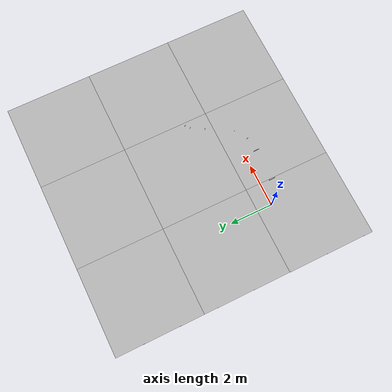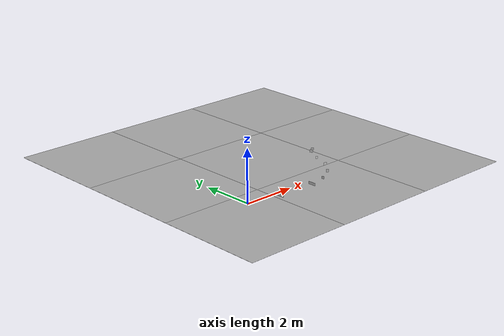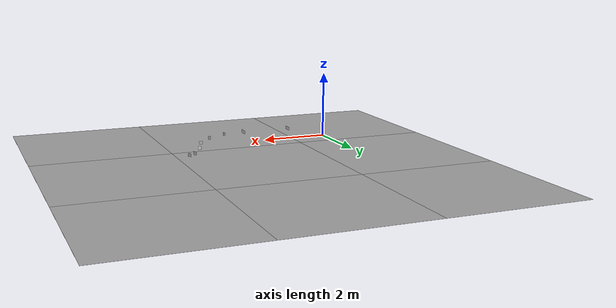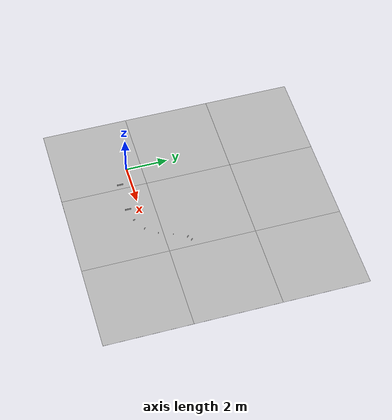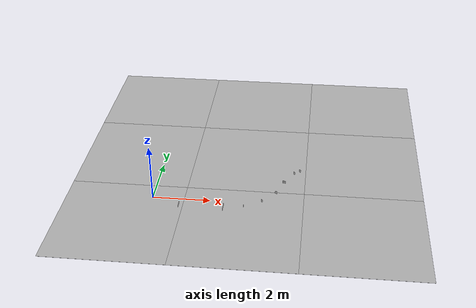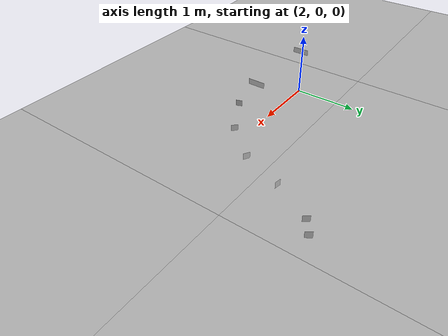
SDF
<sdf version='1.6'><world name='default'>
    <light name='sun_light' type='directional'>
      <pose frame=''>0 0 10 0 -0 0</pose>
      <diffuse>0.5 0.5 0.5 1</diffuse>
      <specular>0.1 0.1 0.1 1</specular>
      <direction>0.1 0.1 -0.9</direction>
      <attenuation>
        <range>20</range>
        <constant>0.5</constant>
        <linear>0.01</linear>
        <quadratic>0.001</quadratic>
      </attenuation>
      <cast_shadows>1</cast_shadows>
    </light>

    <model name='Tile/0-0'>
      <static>1</static>
      <link name='link'>
        <collision name='collision'>
          <geometry>
            <plane>
              <normal>0 0 1</normal>
              <size>4.096 4.096</size>
            </plane>
          </geometry>
          <surface>
            <friction>
              <ode>
                <mu>100</mu>
                <mu2>50</mu2>
              </ode>
              <torsional>
                <ode/>
              </torsional>
            </friction>
            <contact>
              <ode/>
            </contact>
            <bounce/>
          </surface>
          <max_contacts>10</max_contacts>
        </collision>
        <visual name='visual'>
          <cast_shadows>0</cast_shadows>
          <geometry>
            <plane>
              <normal>0 0 1</normal>
              <size>4.096 4.096</size>
            </plane>
          </geometry>
          <material>
            <script>
              <uri>file://materials/scripts</uri>
              <uri>file://materials/textures</uri>
              <name>Tile/d2a0822d2df9434b2a10c1df4b51959f07967b7722c4dc5c94304e16f4e1de29</name>
            </script>
          </material>
        </visual>
        <self_collide>0</self_collide>
        <enable_wind>0</enable_wind>
        <kinematic>0</kinematic>
      </link>
      <pose frame=''>-0.952 -1.3519999999999999 0 0 -0 0</pose>
    </model>

    <model name='Tile/0-1'>
      <static>1</static>
      <link name='link'>
        <collision name='collision'>
          <geometry>
            <plane>
              <normal>0 0 1</normal>
              <size>4.096 4.096</size>
            </plane>
          </geometry>
          <surface>
            <friction>
              <ode>
                <mu>100</mu>
                <mu2>50</mu2>
              </ode>
              <torsional>
                <ode/>
              </torsional>
            </friction>
            <contact>
              <ode/>
            </contact>
            <bounce/>
          </surface>
          <max_contacts>10</max_contacts>
        </collision>
        <visual name='visual'>
          <cast_shadows>0</cast_shadows>
          <geometry>
            <plane>
              <normal>0 0 1</normal>
              <size>4.096 4.096</size>
            </plane>
          </geometry>
          <material>
            <script>
              <uri>file://materials/scripts</uri>
              <uri>file://materials/textures</uri>
              <name>Tile/5eab350b8220ac9944dbdfa4ac3288c7c17e24c3bf5df0dfcf6173d64dae00a1</name>
            </script>
          </material>
        </visual>
        <self_collide>0</self_collide>
        <enable_wind>0</enable_wind>
        <kinematic>0</kinematic>
      </link>
      <pose frame=''>-0.952 2.744 0 0 -0 0</pose>
    </model>

    <model name='Tile/0-2'>
      <static>1</static>
      <link name='link'>
        <collision name='collision'>
          <geometry>
            <plane>
              <normal>0 0 1</normal>
              <size>4.096 4.096</size>
            </plane>
          </geometry>
          <surface>
            <friction>
              <ode>
                <mu>100</mu>
                <mu2>50</mu2>
              </ode>
              <torsional>
                <ode/>
              </torsional>
            </friction>
            <contact>
              <ode/>
            </contact>
            <bounce/>
          </surface>
          <max_contacts>10</max_contacts>
        </collision>
        <visual name='visual'>
          <cast_shadows>0</cast_shadows>
          <geometry>
            <plane>
              <normal>0 0 1</normal>
              <size>4.096 4.096</size>
            </plane>
          </geometry>
          <material>
            <script>
              <uri>file://materials/scripts</uri>
              <uri>file://materials/textures</uri>
              <name>Tile/5eab350b8220ac9944dbdfa4ac3288c7c17e24c3bf5df0dfcf6173d64dae00a1</name>
            </script>
          </material>
        </visual>
        <self_collide>0</self_collide>
        <enable_wind>0</enable_wind>
        <kinematic>0</kinematic>
      </link>
      <pose frame=''>-0.952 6.84 0 0 -0 0</pose>
    </model>

    <model name='Tile/1-0'>
      <static>1</static>
      <link name='link'>
        <collision name='collision'>
          <geometry>
            <plane>
              <normal>0 0 1</normal>
              <size>4.096 4.096</size>
            </plane>
          </geometry>
          <surface>
            <friction>
              <ode>
                <mu>100</mu>
                <mu2>50</mu2>
              </ode>
              <torsional>
                <ode/>
              </torsional>
            </friction>
            <contact>
              <ode/>
            </contact>
            <bounce/>
          </surface>
          <max_contacts>10</max_contacts>
        </collision>
        <visual name='visual'>
          <cast_shadows>0</cast_shadows>
          <geometry>
            <plane>
              <normal>0 0 1</normal>
              <size>4.096 4.096</size>
            </plane>
          </geometry>
          <material>
            <script>
              <uri>file://materials/scripts</uri>
              <uri>file://materials/textures</uri>
              <name>Tile/eee40ccea9311317126f079acab8a58f75d18f4e68f1ac2bab7b07feca064cc9</name>
            </script>
          </material>
        </visual>
        <self_collide>0</self_collide>
        <enable_wind>0</enable_wind>
        <kinematic>0</kinematic>
      </link>
      <pose frame=''>3.144 -1.3519999999999999 0 0 -0 0</pose>
    </model>

    <model name='Tile/1-1'>
      <static>1</static>
      <link name='link'>
        <collision name='collision'>
          <geometry>
            <plane>
              <normal>0 0 1</normal>
              <size>4.096 4.096</size>
            </plane>
          </geometry>
          <surface>
            <friction>
              <ode>
                <mu>100</mu>
                <mu2>50</mu2>
              </ode>
              <torsional>
                <ode/>
              </torsional>
            </friction>
            <contact>
              <ode/>
            </contact>
            <bounce/>
          </surface>
          <max_contacts>10</max_contacts>
        </collision>
        <visual name='visual'>
          <cast_shadows>0</cast_shadows>
          <geometry>
            <plane>
              <normal>0 0 1</normal>
              <size>4.096 4.096</size>
            </plane>
          </geometry>
          <material>
            <script>
              <uri>file://materials/scripts</uri>
              <uri>file://materials/textures</uri>
              <name>Tile/40c1d95162f8e69419f5567cfef437df2ad17ad79a02e6fcf10550b6644f04d4</name>
            </script>
          </material>
        </visual>
        <self_collide>0</self_collide>
        <enable_wind>0</enable_wind>
        <kinematic>0</kinematic>
      </link>
      <pose frame=''>3.144 2.744 0 0 -0 0</pose>
    </model>

    <model name='Tile/1-2'>
      <static>1</static>
      <link name='link'>
        <collision name='collision'>
          <geometry>
            <plane>
              <normal>0 0 1</normal>
              <size>4.096 4.096</size>
            </plane>
          </geometry>
          <surface>
            <friction>
              <ode>
                <mu>100</mu>
                <mu2>50</mu2>
              </ode>
              <torsional>
                <ode/>
              </torsional>
            </friction>
            <contact>
              <ode/>
            </contact>
            <bounce/>
          </surface>
          <max_contacts>10</max_contacts>
        </collision>
        <visual name='visual'>
          <cast_shadows>0</cast_shadows>
          <geometry>
            <plane>
              <normal>0 0 1</normal>
              <size>4.096 4.096</size>
            </plane>
          </geometry>
          <material>
            <script>
              <uri>file://materials/scripts</uri>
              <uri>file://materials/textures</uri>
              <name>Tile/8089560df727e5bf040626c1898c298de83482171674961d943feacb3bd11cbe</name>
            </script>
          </material>
        </visual>
        <self_collide>0</self_collide>
        <enable_wind>0</enable_wind>
        <kinematic>0</kinematic>
      </link>
      <pose frame=''>3.144 6.84 0 0 -0 0</pose>
    </model>

    <model name='Tile/2-0'>
      <static>1</static>
      <link name='link'>
        <collision name='collision'>
          <geometry>
            <plane>
              <normal>0 0 1</normal>
              <size>4.096 4.096</size>
            </plane>
          </geometry>
          <surface>
            <friction>
              <ode>
                <mu>100</mu>
                <mu2>50</mu2>
              </ode>
              <torsional>
                <ode/>
              </torsional>
            </friction>
            <contact>
              <ode/>
            </contact>
            <bounce/>
          </surface>
          <max_contacts>10</max_contacts>
        </collision>
        <visual name='visual'>
          <cast_shadows>0</cast_shadows>
          <geometry>
            <plane>
              <normal>0 0 1</normal>
              <size>4.096 4.096</size>
            </plane>
          </geometry>
          <material>
            <script>
              <uri>file://materials/scripts</uri>
              <uri>file://materials/textures</uri>
              <name>Tile/5eab350b8220ac9944dbdfa4ac3288c7c17e24c3bf5df0dfcf6173d64dae00a1</name>
            </script>
          </material>
        </visual>
        <self_collide>0</self_collide>
        <enable_wind>0</enable_wind>
        <kinematic>0</kinematic>
      </link>
      <pose frame=''>7.24 -1.3519999999999999 0 0 -0 0</pose>
    </model>

    <model name='Tile/2-1'>
      <static>1</static>
      <link name='link'>
        <collision name='collision'>
          <geometry>
            <plane>
              <normal>0 0 1</normal>
              <size>4.096 4.096</size>
            </plane>
          </geometry>
          <surface>
            <friction>
              <ode>
                <mu>100</mu>
                <mu2>50</mu2>
              </ode>
              <torsional>
                <ode/>
              </torsional>
            </friction>
            <contact>
              <ode/>
            </contact>
            <bounce/>
          </surface>
          <max_contacts>10</max_contacts>
        </collision>
        <visual name='visual'>
          <cast_shadows>0</cast_shadows>
          <geometry>
            <plane>
              <normal>0 0 1</normal>
              <size>4.096 4.096</size>
            </plane>
          </geometry>
          <material>
            <script>
              <uri>file://materials/scripts</uri>
              <uri>file://materials/textures</uri>
              <name>Tile/d36b4aa86f237d4a5b8716848078fc133ab7f4939d1591c69f0b5a6ed45d4a13</name>
            </script>
          </material>
        </visual>
        <self_collide>0</self_collide>
        <enable_wind>0</enable_wind>
        <kinematic>0</kinematic>
      </link>
      <pose frame=''>7.24 2.744 0 0 -0 0</pose>
    </model>

    <model name='Tile/2-2'>
      <static>1</static>
      <link name='link'>
        <collision name='collision'>
          <geometry>
            <plane>
              <normal>0 0 1</normal>
              <size>4.096 4.096</size>
            </plane>
          </geometry>
          <surface>
            <friction>
              <ode>
                <mu>100</mu>
                <mu2>50</mu2>
              </ode>
              <torsional>
                <ode/>
              </torsional>
            </friction>
            <contact>
              <ode/>
            </contact>
            <bounce/>
          </surface>
          <max_contacts>10</max_contacts>
        </collision>
        <visual name='visual'>
          <cast_shadows>0</cast_shadows>
          <geometry>
            <plane>
              <normal>0 0 1</normal>
              <size>4.096 4.096</size>
            </plane>
          </geometry>
          <material>
            <script>
              <uri>file://materials/scripts</uri>
              <uri>file://materials/textures</uri>
              <name>Tile/5eab350b8220ac9944dbdfa4ac3288c7c17e24c3bf5df0dfcf6173d64dae00a1</name>
            </script>
          </material>
        </visual>
        <self_collide>0</self_collide>
        <enable_wind>0</enable_wind>
        <kinematic>0</kinematic>
      </link>
      <pose frame=''>7.24 6.84 0 0 -0 0</pose>
    </model>

    <model name='Sign/-5'>
      <static>1</static>
      <link name='link'>
        <visual name='visual'>
          <cast_shadows>0</cast_shadows>
          <geometry>
            <plane>
              <normal>0 0 1</normal>
              <size>0.3 0.1</size>
            </plane>
          </geometry>
          <material>
            <script>
              <uri>file://materials/scripts</uri>
              <uri>file://materials/textures</uri>
              <name>Sign/stvo-625-11</name>
            </script>
          </material>
        </visual>
        <self_collide>0</self_collide>
        <enable_wind>0</enable_wind>
        <kinematic>0</kinematic>
      </link>
      <pose frame=''>1.005 -0.55 0.2 1.5707963267948966 0 4.71238898038469</pose>
    </model>

    <model name='Sign/-10'>
      <static>1</static>
      <link name='link'>
        <visual name='visual'>
          <cast_shadows>0</cast_shadows>
          <geometry>
            <plane>
              <normal>0 0 1</normal>
              <size>0.3 0.1</size>
            </plane>
          </geometry>
          <material>
            <script>
              <uri>file://materials/scripts</uri>
              <uri>file://materials/textures</uri>
              <name>Sign/stvo-625-11</name>
            </script>
          </material>
        </visual>
        <self_collide>0</self_collide>
        <enable_wind>0</enable_wind>
        <kinematic>0</kinematic>
      </link>
      <pose frame=''>2.5149999999999997 -0.55 0.2 1.5707963267948966 0 4.71238898038469</pose>
    </model>

    <model name='Sign/-15'>
      <static>1</static>
      <link name='link'>
        <visual name='visual'>
          <cast_shadows>0</cast_shadows>
          <geometry>
            <plane>
              <normal>0 0 1</normal>
              <size>0.1 0.1</size>
            </plane>
          </geometry>
          <material>
            <script>
              <uri>file://materials/scripts</uri>
              <uri>file://materials/textures</uri>
              <name>Sign/stvo-625-10</name>
            </script>
          </material>
        </visual>
        <self_collide>0</self_collide>
        <enable_wind>0</enable_wind>
        <kinematic>0</kinematic>
      </link>
      <pose frame=''>3.1916377425889833 -0.43069050981589296 0.2 1.5707963267948966 0 5.061454830783555</pose>
    </model>

    <model name='Sign/-20'>
      <static>1</static>
      <link name='link'>
        <visual name='visual'>
          <cast_shadows>0</cast_shadows>
          <geometry>
            <plane>
              <normal>0 0 1</normal>
              <size>0.1 0.1</size>
            </plane>
          </geometry>
          <material>
            <script>
              <uri>file://materials/scripts</uri>
              <uri>file://materials/textures</uri>
              <name>Sign/stvo-625-10</name>
            </script>
          </material>
        </visual>
        <self_collide>0</self_collide>
        <enable_wind>0</enable_wind>
        <kinematic>0</kinematic>
      </link>
      <pose frame=''>3.7866629873122055 -0.08715252460031775 0.2 1.5707963267948966 0 5.410520681182422</pose>
    </model>

    <model name='Sign/-25'>
      <static>1</static>
      <link name='link'>
        <visual name='visual'>
          <cast_shadows>0</cast_shadows>
          <geometry>
            <plane>
              <normal>0 0 1</normal>
              <size>0.1 0.1</size>
            </plane>
          </geometry>
          <material>
            <script>
              <uri>file://materials/scripts</uri>
              <uri>file://materials/textures</uri>
              <name>Sign/stvo-625-10</name>
            </script>
          </material>
        </visual>
        <self_collide>0</self_collide>
        <enable_wind>0</enable_wind>
        <kinematic>0</kinematic>
      </link>
      <pose frame=''>4.228306908018705 0.4391782045490447 0.2 1.5707963267948966 0 5.759586531581288</pose>
    </model>

    <model name='Sign/-30'>
      <static>1</static>
      <link name='link'>
        <visual name='visual'>
          <cast_shadows>0</cast_shadows>
          <geometry>
            <plane>
              <normal>0 0 1</normal>
              <size>0.1 0.1</size>
            </plane>
          </geometry>
          <material>
            <script>
              <uri>file://materials/scripts</uri>
              <uri>file://materials/textures</uri>
              <name>Sign/stvo-625-10</name>
            </script>
          </material>
        </visual>
        <self_collide>0</self_collide>
        <enable_wind>0</enable_wind>
        <kinematic>0</kinematic>
      </link>
      <pose frame=''>4.463300729901189 1.0848184238825138 0.2 1.5707963267948966 0 6.1086523819801535</pose>
    </model>

    <model name='Sign/-43'>
      <static>1</static>
      <link name='link'>
        <visual name='visual'>
          <cast_shadows>0</cast_shadows>
          <geometry>
            <plane>
              <normal>0 0 1</normal>
              <size>0.1 0.1</size>
            </plane>
          </geometry>
          <material>
            <script>
              <uri>file://materials/scripts</uri>
              <uri>file://materials/textures</uri>
              <name>Sign/stvo-209-10</name>
            </script>
          </material>
        </visual>
        <self_collide>0</self_collide>
        <enable_wind>0</enable_wind>
        <kinematic>0</kinematic>
      </link>
      <pose frame=''>4.989824779206208 1.8227724605785385 0.2 1.5707963267948966 0 5.323254218582705</pose>
    </model>

    <model name='Sign/-44'>
      <static>1</static>
      <link name='link'>
        <visual name='visual'>
          <cast_shadows>0</cast_shadows>
          <geometry>
            <plane>
              <normal>0 0 1</normal>
              <size>0.1 0.1</size>
            </plane>
          </geometry>
          <material>
            <script>
              <uri>file://materials/scripts</uri>
              <uri>file://materials/textures</uri>
              <name>Sign/stvo-205</name>
            </script>
          </material>
        </visual>
        <self_collide>0</self_collide>
        <enable_wind>0</enable_wind>
        <kinematic>0</kinematic>
      </link>
      <pose frame=''>4.78503676813396 1.6793783514907767 0.2 1.5707963267948966 0 5.323254218582705</pose>
    </model>
    </world></sdf>
